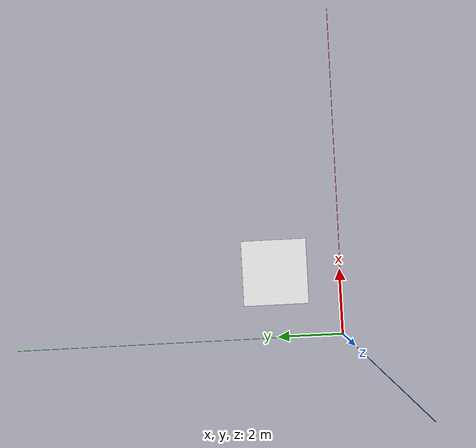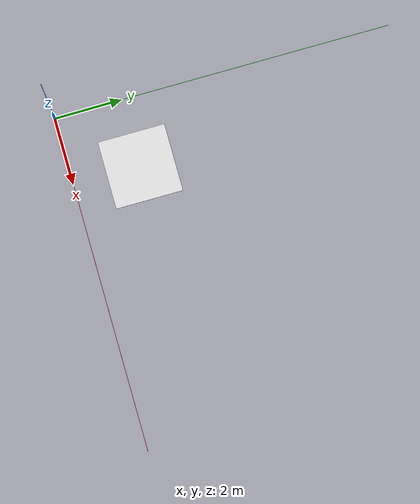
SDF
<sdf version="1.9">
 <world name="iris_runway">
  <physics name="1ms" type="ignore">
   <max_step_size>0.001</max_step_size>
   <real_time_factor>1.0</real_time_factor>
  </physics>
  <plugin filename="gz-sim-physics-system" name="gz::sim::systems::Physics"/>
  <plugin filename="gz-sim-sensors-system" name="gz::sim::systems::Sensors">
   <render_engine>ogre2</render_engine>
  </plugin>
  <plugin filename="gz-sim-user-commands-system" name="gz::sim::systems::UserCommands"/>
  <plugin filename="gz-sim-scene-broadcaster-system" name="gz::sim::systems::SceneBroadcaster"/>
  <plugin filename="gz-sim-imu-system" name="gz::sim::systems::Imu"/>
  <plugin filename="gz-sim-navsat-system" name="gz::sim::systems::NavSat"/>
  <scene><ambient>1.0 1.0 1.0</ambient><background>0.8 0.8 0.8</background></scene>
  <spherical_coordinates>
   <surface_model>EARTH_WGS84</surface_model>
   <latitude_deg>26.5189,</latitude_deg>
   <longitude_deg>80.2324,</longitude_deg>
   <elevation>584</elevation>
   <heading_deg>0</heading_deg>
  </spherical_coordinates>
  <light type="directional" name="sun">
   <pose>0 0 10 0 0 0</pose>
   <diffuse>0.8 0.8 0.8 1</diffuse>
   <specular>0.8 0.8 0.8 1</specular>
   <attenuation>
    <range>1000</range>
    <constant>0.9</constant>
    <linear>0.01</linear>
    <quadratic>0.001</quadratic>
   </attenuation>
   <direction>-0.5 0.1 -0.9</direction>
  </light>
  <model name="axes">
   <static>1</static>
   <link name="link">
    <visual name="r">
     <cast_shadows>0</cast_shadows>
     <pose>5 0 0.1 0 0 0</pose>
     <geometry><box><size>10 0.01 0.01</size></box></geometry>
     <material>
      <ambient>1 0 0 0.8</ambient>
      <diffuse>1 0 0 0.8</diffuse>
      <emissive>1 0 0 0.8</emissive>
      <specular>0.5 0.5 0.5 0.8</specular>
     </material>
    </visual>
    <visual name="g">
     <cast_shadows>0</cast_shadows>
     <pose>0 5 0.1 0 0 0</pose>
     <geometry><box><size>0.01 10 0.01</size></box></geometry>
     <material>
      <ambient>0 1 0 0.8</ambient>
      <diffuse>0 1 0 0.8</diffuse>
      <emissive>0 1 0 0.8</emissive>
      <specular>0.5 0.5 0.5 0.8</specular>
     </material>
    </visual>
    <visual name="b">
     <cast_shadows>0</cast_shadows>
     <pose>0 0 5.1 0 0 0</pose>
     <geometry><box><size>0.01 0.01 10</size></box></geometry>
     <material>
      <ambient>0 0 1 0.8</ambient>
      <diffuse>0 0 1 0.8</diffuse>
      <emissive>0 0 1 0.8</emissive>
      <specular>0.5 0.5 0.5 0.8</specular>
     </material>
    </visual>
    <sensor name="navsat_sensor" type="navsat"><always_on>1</always_on><update_rate>1</update_rate></sensor>
   </link>
  </model>
  <include><uri>model://aruco_marker</uri><pose>2 2 0.01 0 0 0</pose></include>
 </world>
</sdf>

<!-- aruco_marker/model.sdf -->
<sdf version="1.9">
<model name="aruco_marker">
  <static>true</static>
  <link name="link">

    <collision name="collision">
      <geometry>
        <box>
          <size>2 2 0.02</size>
        </box>
      </geometry>
    </collision>

    <visual name="base">
      <geometry>
        <box>
          <size>2 2 0.02</size>
        </box>
      </geometry>
    </visual>

    <visual name="marker">
      <pose>0 0 0.011 0 0 0</pose>
      <geometry>
        <plane>
          <size>2 2</size>
        </plane>
      </geometry>
     <material>
  <ambient>1 1 1 1</ambient>
  <diffuse>1 1 1 1</diffuse>
  <pbr>
    <metal>
      <albedo_map>model://aruco_marker/materials/textures/aruco_0.png</albedo_map>
    </metal>
  </pbr>
</material>
    </visual>

  </link>
</model>
</sdf>
